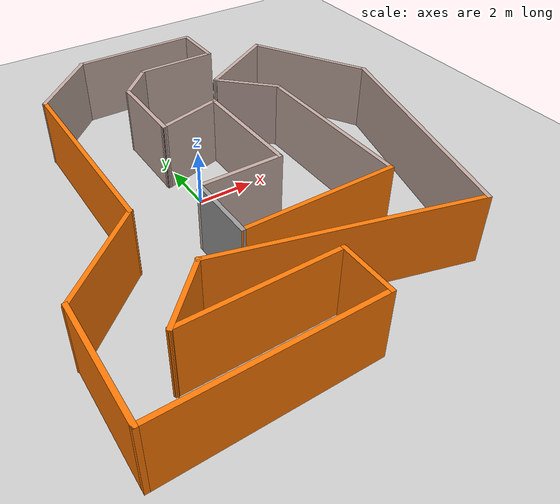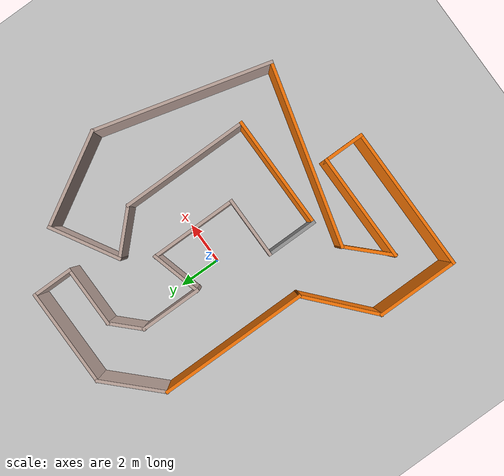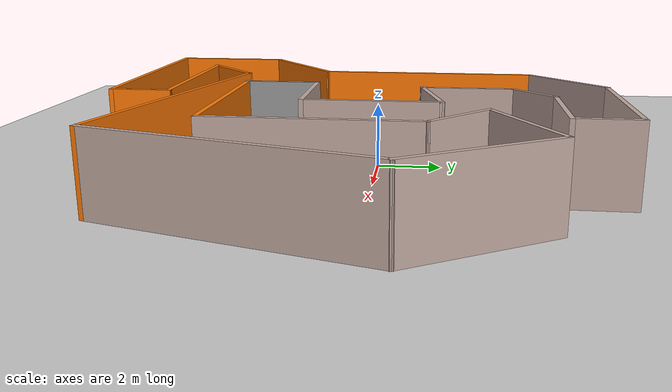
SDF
<sdf version="1.6">
 <world name="default">
  <light name="sun" type="directional">
   <pose>0 0 15 0 -0 0</pose>
   <diffuse>1 1 1 1</diffuse>
   <specular>0.1 0.1 0.1 1</specular>
   <attenuation>
    <range>1000</range>
    <constant>0.9</constant>
    <linear>0.01</linear>
    <quadratic>0.001</quadratic>
   </attenuation>
   <direction>-0.5 0.5 -1</direction>
  </light>
  <model name="ground_plane">
   <static>1</static>
   <link name="link">
    <collision name="collision">
     <geometry><plane><normal>0 0 1</normal><size>100 100</size></plane></geometry>
     <surface><friction><ode><mu>100</mu><mu2>50</mu2></ode></friction></surface>
    </collision>
    <visual name="visual">
     <transparency>1</transparency>
     <cast_shadows>0</cast_shadows>
     <geometry><plane><normal>0 0 1</normal><size>100 100</size></plane></geometry>
     <material>
      <script><uri>file://media/materials/scripts/gazebo.material</uri><name>Gazebo/Grey</name></script>
     </material>
    </visual>
   </link>
  </model>
  <gravity>0 0 -9.8</gravity>
  <magnetic_field>6e-06 2.3e-05 -4.2e-05</magnetic_field>
  <atmosphere type="adiabatic"/>
  <physics name="default_physics" default="0" type="ode">
   <max_step_size>0.001</max_step_size>
   <real_time_factor>1</real_time_factor>
   <real_time_update_rate>1000</real_time_update_rate>
  </physics>
  <scene><ambient>0.4 0.4 0.4 1</ambient><background>0.7 0.7 0.7 1</background><shadows>1</shadows></scene>
  <spherical_coordinates>
   <surface_model>EARTH_WGS84</surface_model>
   <latitude_deg>0</latitude_deg>
   <longitude_deg>0</longitude_deg>
   <elevation>0</elevation>
   <heading_deg>0</heading_deg>
  </spherical_coordinates>
  <model name="crazy_map">
   <pose>0.868469 -0.558186 0 0 -0 0</pose>
   <link name="Wall_0">
    <collision name="Wall_0_Collision">
     <geometry><box><size>7.25 0.15 2.5</size></box></geometry>
     <pose>0 0 1.25 0 -0 0</pose>
    </collision>
    <visual name="Wall_0_Visual">
     <pose>0 0 1.25 0 -0 0</pose>
     <geometry><box><size>7.25 0.15 2.5</size></box></geometry>
     <material>
      <script><uri>file://media/materials/scripts/gazebo.material</uri><name>Gazebo/Grey</name></script>
      <ambient>0.996078 0.47451 0.0196078 1</ambient>
     </material>
    </visual>
    <pose>-4.17847 2.02819 0 0 -0 1.5708</pose>
   </link>
   <link name="Wall_1">
    <collision name="Wall_1_Collision">
     <geometry><box><size>3.25 0.15 2.5</size></box></geometry>
     <pose>0 0 1.25 0 -0 0</pose>
    </collision>
    <visual name="Wall_1_Visual">
     <pose>0 0 1.25 0 -0 0</pose>
     <geometry><box><size>3.25 0.15 2.5</size></box></geometry>
     <material>
      <script><uri>file://media/materials/scripts/gazebo.material</uri><name>Gazebo/Grey</name></script>
      <ambient>0.760784 0.662745 0.627451 1</ambient>
     </material>
    </visual>
    <pose>-3.08245 6.6742 0 0 -0 0.785398</pose>
   </link>
   <link name="Wall_10">
    <collision name="Wall_10_Collision">
     <geometry><box><size>3 0.15 2.5</size></box></geometry>
     <pose>0 0 1.25 0 -0 0</pose>
    </collision>
    <visual name="Wall_10_Visual">
     <pose>0 0 1.25 0 -0 0</pose>
     <geometry><box><size>3 0.15 2.5</size></box></geometry>
     <material>
      <script><uri>file://media/materials/scripts/gazebo.material</uri><name>Gazebo/Grey</name></script>
      <ambient>0.760784 0.662745 0.627451 1</ambient>
     </material>
    </visual>
    <pose>-0.522883 -1.55293 0 0 -0 3.14159</pose>
   </link>
   <link name="Wall_11">
    <collision name="Wall_11_Collision">
     <geometry><box><size>2.5 0.15 2.5</size></box></geometry>
     <pose>0 0 1.25 0 -0 0</pose>
    </collision>
    <visual name="Wall_11_Visual">
     <pose>0 0 1.25 0 -0 0</pose>
     <geometry><box><size>2.5 0.15 2.5</size></box></geometry>
     <material>
      <script><uri>file://media/materials/scripts/gazebo.material</uri><name>Gazebo/Grey</name></script>
      <ambient>1 1 1 1</ambient>
     </material>
    </visual>
    <pose>-1.94788 -2.72793 0 0 0 -1.5708</pose>
   </link>
   <link name="Wall_12">
    <collision name="Wall_12_Collision">
     <geometry><box><size>5.5 0.15 2.5</size></box></geometry>
     <pose>0 0 1.25 0 -0 0</pose>
    </collision>
    <visual name="Wall_12_Visual">
     <pose>0 0 1.25 0 -0 0</pose>
     <geometry><box><size>5.5 0.15 2.5</size></box></geometry>
     <material>
      <script><uri>file://media/materials/scripts/gazebo.material</uri><name>Gazebo/Grey</name></script>
      <ambient>0.996078 0.47451 0.0196078 1</ambient>
     </material>
    </visual>
    <pose>0.727117 -3.90293 0 0 -0 0</pose>
   </link>
   <link name="Wall_13">
    <collision name="Wall_13_Collision">
     <geometry><box><size>6.25 0.15 2.5</size></box></geometry>
     <pose>0 0 1.25 0 -0 0</pose>
    </collision>
    <visual name="Wall_13_Visual">
     <pose>0 0 1.25 0 -0 0</pose>
     <geometry><box><size>6.25 0.15 2.5</size></box></geometry>
     <material>
      <script><uri>file://media/materials/scripts/gazebo.material</uri><name>Gazebo/Grey</name></script>
      <ambient>0.760784 0.662745 0.627451 1</ambient>
     </material>
    </visual>
    <pose>3.40212 -0.852929 0 0 -0 1.5708</pose>
   </link>
   <link name="Wall_14">
    <collision name="Wall_14_Collision">
     <geometry><box><size>2.5 0.15 2.5</size></box></geometry>
     <pose>0 0 1.25 0 -0 0</pose>
    </collision>
    <visual name="Wall_14_Visual">
     <pose>0 0 1.25 0 -0 0</pose>
     <geometry><box><size>2.5 0.15 2.5</size></box></geometry>
     <material>
      <script><uri>file://media/materials/scripts/gazebo.material</uri><name>Gazebo/Grey</name></script>
      <ambient>0.760784 0.662745 0.627451 1</ambient>
     </material>
    </visual>
    <pose>2.57127 3.02792 0 0 -0 2.35619</pose>
   </link>
   <link name="Wall_15">
    <collision name="Wall_15_Collision">
     <geometry><box><size>3.5 0.15 2.5</size></box></geometry>
     <pose>0 0 1.25 0 -0 0</pose>
    </collision>
    <visual name="Wall_15_Visual">
     <pose>0 0 1.25 0 -0 0</pose>
     <geometry><box><size>3.5 0.15 2.5</size></box></geometry>
     <material>
      <script><uri>file://media/materials/scripts/gazebo.material</uri><name>Gazebo/Grey</name></script>
      <ambient>0.760784 0.662745 0.627451 1</ambient>
     </material>
    </visual>
    <pose>3.19101 4.69627 0 0 -0 0.523599</pose>
   </link>
   <link name="Wall_16">
    <collision name="Wall_16_Collision">
     <geometry><box><size>4.75 0.15 2.5</size></box></geometry>
     <pose>0 0 1.25 0 -0 0</pose>
    </collision>
    <visual name="Wall_16_Visual">
     <pose>0 0 1.25 0 -0 0</pose>
     <geometry><box><size>4.75 0.15 2.5</size></box></geometry>
     <material>
      <script><uri>file://media/materials/scripts/gazebo.material</uri><name>Gazebo/Grey</name></script>
      <ambient>0.760784 0.662745 0.627451 1</ambient>
     </material>
    </visual>
    <pose>5.7916 3.54191 0 0 0 -1.0472</pose>
   </link>
   <link name="Wall_17">
    <collision name="Wall_17_Collision">
     <geometry><box><size>8.5 0.15 2.5</size></box></geometry>
     <pose>0 0 1.25 0 -0 0</pose>
    </collision>
    <visual name="Wall_17_Visual">
     <pose>0 0 1.25 0 -0 0</pose>
     <geometry><box><size>8.5 0.15 2.5</size></box></geometry>
     <material>
      <script><uri>file://media/materials/scripts/gazebo.material</uri><name>Gazebo/Grey</name></script>
      <ambient>0.760784 0.662745 0.627451 1</ambient>
     </material>
    </visual>
    <pose>5.86103 -2.48269 0 0 0 -1.8326</pose>
   </link>
   <link name="Wall_18">
    <collision name="Wall_18_Collision">
     <geometry><box><size>8.75 0.15 2.5</size></box></geometry>
     <pose>0 0 1.25 0 -0 0</pose>
    </collision>
    <visual name="Wall_18_Visual">
     <pose>0 0 1.25 0 -0 0</pose>
     <geometry><box><size>8.75 0.15 2.5</size></box></geometry>
     <material>
      <script><uri>file://media/materials/scripts/gazebo.material</uri><name>Gazebo/Grey</name></script>
      <ambient>0.996078 0.47451 0.0196078 1</ambient>
     </material>
    </visual>
    <pose>0.626981 -5.4025 0 0 -0 2.87979</pose>
   </link>
   <link name="Wall_19">
    <collision name="Wall_19_Collision">
     <geometry><box><size>2.5 0.15 2.5</size></box></geometry>
     <pose>0 0 1.25 0 -0 0</pose>
    </collision>
    <visual name="Wall_19_Visual">
     <pose>0 0 1.25 0 -0 0</pose>
     <geometry><box><size>2.5 0.15 2.5</size></box></geometry>
     <material>
      <script><uri>file://media/materials/scripts/gazebo.material</uri><name>Gazebo/Grey</name></script>
      <ambient>0.996078 0.47451 0.0196078 1</ambient>
     </material>
    </visual>
    <pose>-4.35735 -5.12043 0 0 0 -2.35619</pose>
   </link>
   <link name="Wall_2">
    <collision name="Wall_2_Collision">
     <geometry><box><size>4.75 0.15 2.5</size></box></geometry>
     <pose>0 0 1.25 0 -0 0</pose>
    </collision>
    <visual name="Wall_2_Visual">
     <pose>0 0 1.25 0 -0 0</pose>
     <geometry><box><size>4.75 0.15 2.5</size></box></geometry>
     <material>
      <script><uri>file://media/materials/scripts/gazebo.material</uri><name>Gazebo/Grey</name></script>
      <ambient>0.760784 0.662745 0.627451 1</ambient>
     </material>
    </visual>
    <pose>0.313562 7.77022 0 0 -0 0</pose>
   </link>
   <link name="Wall_20">
    <collision name="Wall_20_Collision">
     <geometry><box><size>5.25 0.15 2.5</size></box></geometry>
     <pose>0 0 1.25 0 -0 0</pose>
    </collision>
    <visual name="Wall_20_Visual">
     <pose>0 0 1.25 0 -0 0</pose>
     <geometry><box><size>5.25 0.15 2.5</size></box></geometry>
     <material>
      <script><uri>file://media/materials/scripts/gazebo.material</uri><name>Gazebo/Grey</name></script>
      <ambient>0.996078 0.47451 0.0196078 1</ambient>
     </material>
    </visual>
    <pose>-2.6382 -5.95128 0 0 -0 0</pose>
   </link>
   <link name="Wall_21">
    <collision name="Wall_21_Collision">
     <geometry><box><size>2 0.15 2.5</size></box></geometry>
     <pose>0 0 1.25 0 -0 0</pose>
    </collision>
    <visual name="Wall_21_Visual">
     <pose>0 0 1.25 0 -0 0</pose>
     <geometry><box><size>2 0.15 2.5</size></box></geometry>
     <material>
      <script><uri>file://media/materials/scripts/gazebo.material</uri><name>Gazebo/Grey</name></script>
      <ambient>0.996078 0.47451 0.0196078 1</ambient>
     </material>
    </visual>
    <pose>-0.088201 -6.87628 0 0 0 -1.5708</pose>
   </link>
   <link name="Wall_22">
    <collision name="Wall_22_Collision">
     <geometry><box><size>7 0.15 2.5</size></box></geometry>
     <pose>0 0 1.25 0 -0 0</pose>
    </collision>
    <visual name="Wall_22_Visual">
     <pose>0 0 1.25 0 -0 0</pose>
     <geometry><box><size>7 0.15 2.5</size></box></geometry>
     <material>
      <script><uri>file://media/materials/scripts/gazebo.material</uri><name>Gazebo/Grey</name></script>
      <ambient>0.996078 0.47451 0.0196078 1</ambient>
     </material>
    </visual>
    <pose>-3.5132 -7.80128 0 0 -0 3.14159</pose>
   </link>
   <link name="Wall_23">
    <collision name="Wall_23_Collision">
     <geometry><box><size>4 0.15 2.5</size></box></geometry>
     <pose>0 0 1.25 0 -0 0</pose>
    </collision>
    <visual name="Wall_23_Visual">
     <pose>0 0 1.25 0 -0 0</pose>
     <geometry><box><size>4 0.15 2.5</size></box></geometry>
     <material>
      <script><uri>file://media/materials/scripts/gazebo.material</uri><name>Gazebo/Grey</name></script>
      <ambient>0.996078 0.47451 0.0196078 1</ambient>
     </material>
    </visual>
    <pose>-6.9382 -5.87628 0 0 -0 1.5708</pose>
   </link>
   <link name="Wall_24">
    <collision name="Wall_24_Collision">
     <geometry><box><size>3.82674 0.15 2.5</size></box></geometry>
     <pose>0 0 1.25 0 -0 0</pose>
    </collision>
    <visual name="Wall_24_Visual">
     <pose>0 0 1.25 0 -0 0</pose>
     <geometry><box><size>3.82674 0.15 2.5</size></box></geometry>
     <material>
      <script><uri>file://media/materials/scripts/gazebo.material</uri><name>Gazebo/Grey</name></script>
      <ambient>0.996078 0.47451 0.0196078 1</ambient>
     </material>
    </visual>
    <pose>-5.55833 -2.73655 0 0 -0 0.72184</pose>
   </link>
   <link name="Wall_3">
    <collision name="Wall_3_Collision">
     <geometry><box><size>2 0.15 2.5</size></box></geometry>
     <pose>0 0 1.25 0 -0 0</pose>
    </collision>
    <visual name="Wall_3_Visual">
     <pose>0 0 1.25 0 -0 0</pose>
     <geometry><box><size>2 0.15 2.5</size></box></geometry>
     <material>
      <script><uri>file://media/materials/scripts/gazebo.material</uri><name>Gazebo/Grey</name></script>
      <ambient>0.760784 0.662745 0.627451 1</ambient>
     </material>
    </visual>
    <pose>2.61356 6.84522 0 0 0 -1.5708</pose>
   </link>
   <link name="Wall_4">
    <collision name="Wall_4_Collision">
     <geometry><box><size>3 0.15 2.5</size></box></geometry>
     <pose>0 0 1.25 0 -0 0</pose>
    </collision>
    <visual name="Wall_4_Visual">
     <pose>0 0 1.25 0 -0 0</pose>
     <geometry><box><size>3 0.15 2.5</size></box></geometry>
     <material>
      <script><uri>file://media/materials/scripts/gazebo.material</uri><name>Gazebo/Grey</name></script>
      <ambient>0.760784 0.662745 0.627451 1</ambient>
     </material>
    </visual>
    <pose>1.18856 5.92022 0 0 -0 3.14159</pose>
   </link>
   <link name="Wall_5">
    <collision name="Wall_5_Collision">
     <geometry><box><size>1.75 0.15 2.5</size></box></geometry>
     <pose>0 0 1.25 0 -0 0</pose>
    </collision>
    <visual name="Wall_5_Visual">
     <pose>0 0 1.25 0 -0 0</pose>
     <geometry><box><size>1.75 0.15 2.5</size></box></geometry>
     <material>
      <script><uri>file://media/materials/scripts/gazebo.material</uri><name>Gazebo/Grey</name></script>
      <ambient>0.760784 0.662745 0.627451 1</ambient>
     </material>
    </visual>
    <pose>-0.802123 5.35453 0 0 0 -2.35619</pose>
   </link>
   <link name="Wall_7">
    <collision name="Wall_7_Collision">
     <geometry><box><size>3 0.15 2.5</size></box></geometry>
     <pose>0 0 1.25 0 -0 0</pose>
    </collision>
    <visual name="Wall_7_Visual">
     <pose>0 0 1.25 0 -0 0</pose>
     <geometry><box><size>3 0.15 2.5</size></box></geometry>
     <material>
      <script><uri>file://media/materials/scripts/gazebo.material</uri><name>Gazebo/Grey</name></script>
      <ambient>0.760784 0.662745 0.627451 1</ambient>
     </material>
    </visual>
    <pose>-1.36781 3.36385 0 0 0 -1.5708</pose>
   </link>
   <link name="Wall_8">
    <collision name="Wall_8_Collision">
     <geometry><box><size>2.5 0.15 2.5</size></box></geometry>
     <pose>0 0 1.25 0 -0 0</pose>
    </collision>
    <visual name="Wall_8_Visual">
     <pose>0 0 1.25 0 -0 0</pose>
     <geometry><box><size>2.5 0.15 2.5</size></box></geometry>
     <material>
      <script><uri>file://media/materials/scripts/gazebo.material</uri><name>Gazebo/Grey</name></script>
      <ambient>0.760784 0.662745 0.627451 1</ambient>
     </material>
    </visual>
    <pose>-0.232846 2.24296 0 0 -0 0.261799</pose>
   </link>
   <link name="Wall_9">
    <collision name="Wall_9_Collision">
     <geometry><box><size>4.25 0.15 2.5</size></box></geometry>
     <pose>0 0 1.25 0 -0 0</pose>
    </collision>
    <visual name="Wall_9_Visual">
     <pose>0 0 1.25 0 -0 0</pose>
     <geometry><box><size>4.25 0.15 2.5</size></box></geometry>
     <material>
      <script><uri>file://media/materials/scripts/gazebo.material</uri><name>Gazebo/Grey</name></script>
      <ambient>0.760784 0.662745 0.627451 1</ambient>
     </material>
    </visual>
    <pose>0.902117 0.497071 0 0 0 -1.5708</pose>
   </link>
   <static>1</static>
  </model>
 </world>
</sdf>
